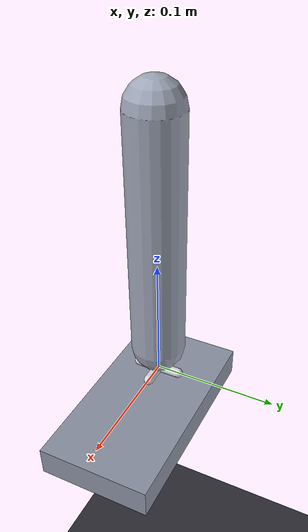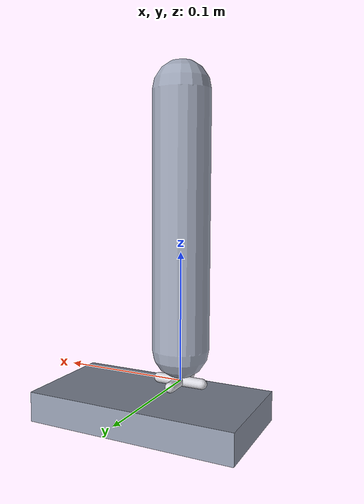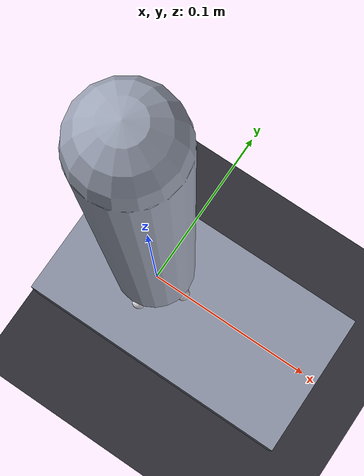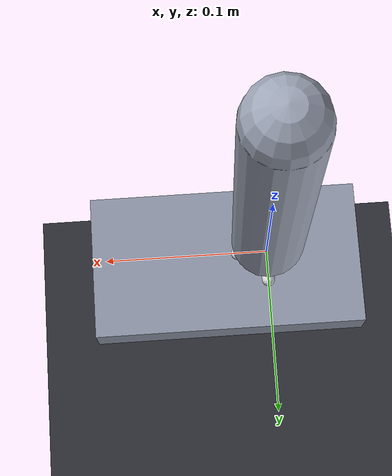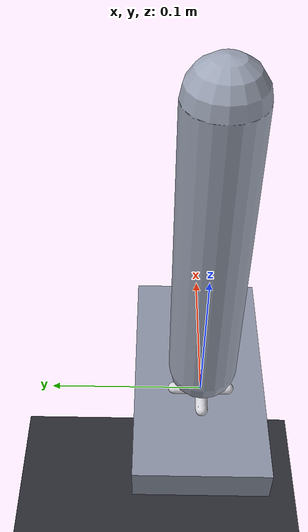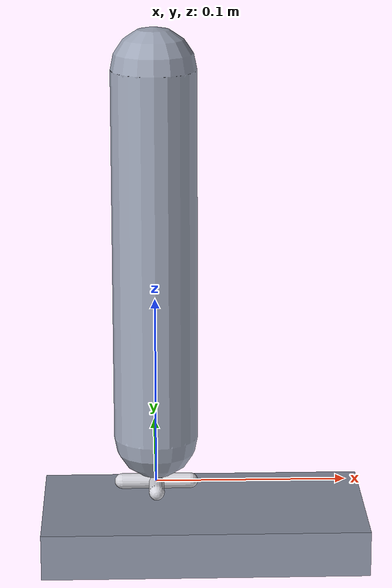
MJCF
<mujoco model="ankle_parallel_mechanism">
  <compiler angle="radian" autolimits="true"/>
  <option timestep="0.002" gravity="0 0 0"/>

  <visual>
    <global offwidth="1920" offheight="1080"/>
    <quality shadowsize="4096"/>
    <headlight diffuse="0.55 0.55 0.55" ambient="0.30 0.30 0.30" specular="0.25 0.25 0.25"/>
    <rgba haze="0.10 0.12 0.16 1"/>
    <map znear="0.005" zfar="20"/>
    <scale forcewidth="0.005" contactwidth="0.01" contactheight="0.01"
           jointlength="0.04" jointwidth="0.002" framelength="0.05" framewidth="0.003"/>
  </visual>

  <asset>
    <texture type="skybox" builtin="gradient" rgb1="0.08 0.10 0.14" rgb2="0.02 0.02 0.04" width="512" height="512"/>
    <texture name="grid" type="2d" builtin="checker" rgb1="0.20 0.20 0.23" rgb2="0.15 0.15 0.18" width="300" height="300" mark="edge" markrgb="0.28 0.28 0.32"/>
    <material name="grid_mat"  texture="grid" texrepeat="6 6" texuniform="true" reflectance="0.05"/>
    <material name="shin_mat"  rgba="0.62 0.65 0.72 1" specular="0.6" shininess="0.5"/>
    <material name="cross_mat" rgba="0.85 0.85 0.88 1" specular="0.7" shininess="0.6"/>
    <material name="foot_mat"  rgba="0.55 0.58 0.65 1" specular="0.5" shininess="0.4"/>
  </asset>

  <worldbody>
    <light name="key"  pos="0.5 -0.4 0.9" dir="-0.5 0.4 -0.9" diffuse="0.7 0.7 0.7" specular="0.3 0.3 0.3"/>
    <light name="fill" pos="-0.5 0.5 0.6" dir="0.5 -0.5 -0.6" diffuse="0.30 0.34 0.40"/>
    <light name="rim"  pos="0 -0.8 0.5"   dir="0 0.8 -0.5"    diffuse="0.20 0.25 0.35"/>
    <geom name="floor" type="plane" pos="0 0 -0.30" size="0 0 0.05" material="grid_mat"/>

    <!-- SHIN: a tall capsule reaching down to the pivot. Fixed in world. -->
    <body name="shin" pos="0 0 0">
      <geom name="shin_visual" type="capsule" material="shin_mat"
            fromto="0 0 0.025  0 0 0.22" size="0.022"/>

      <!-- Universal joint: pitch (around y) parent of roll (around x) -->
      <body name="cross" pos="0 0 0">
        <joint name="pitch" type="hinge" axis="0 1 0" range="-0.45 0.45" damping="0.05"/>
        <!-- Two short crossed capsules to represent the universal-joint cross -->
        <geom name="cross_y" type="capsule" material="cross_mat"
              fromto="0 -0.018 0  0 0.018 0" size="0.004"/>
        <geom name="cross_x" type="capsule" material="cross_mat"
              fromto="-0.018 0 0  0.018 0 0" size="0.004"/>

        <body name="foot" pos="0 0 0">
          <joint name="roll" type="hinge" axis="1 0 0" range="-0.45 0.45" damping="0.05"/>
          <!-- Foot: thin elongated box sitting just below the pivot.
               Forward (x+) is toes, backward (-x) is heel. -->
          <geom name="foot_visual" type="box" material="foot_mat"
                pos="0.025 0 -0.025" size="0.085 0.045 0.012"/>
        </body>
      </body>
    </body>
  </worldbody>

  <actuator>
    <position name="act_pitch" joint="pitch" kp="50" kv="2" ctrlrange="-0.45 0.45"/>
    <position name="act_roll"  joint="roll"  kp="50" kv="2" ctrlrange="-0.45 0.45"/>
  </actuator>
</mujoco>
